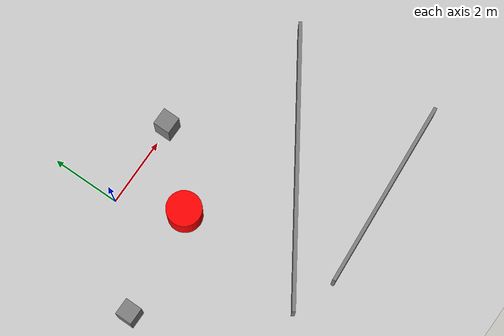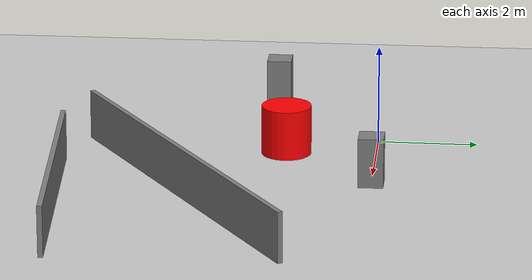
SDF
<?xml version='1.0' encoding='utf-8'?>
<sdf version="1.9">
  <world name="world_two">
    <physics name="1ms" type="dart">
      <max_step_size>0.001</max_step_size>
      <real_time_factor>1</real_time_factor>
      <real_time_update_rate>1000</real_time_update_rate>
    </physics>
    <plugin name="gz::sim::systems::Physics" filename="gz-sim-physics-system" />
    <plugin name="gz::sim::systems::UserCommands" filename="gz-sim-user-commands-system" />
    <plugin name="gz::sim::systems::SceneBroadcaster" filename="gz-sim-scene-broadcaster-system" />
    <plugin name="gz::sim::systems::Contact" filename="gz-sim-contact-system" />
    <plugin name="gz::sim::systems::Sensors" filename="gz-sim-sensors-system">
      <render_engine>ogre2</render_engine>
    </plugin>
    <gravity>0 0 -9.8</gravity>
    <magnetic_field>6e-06 2.3e-05 -4.2e-05</magnetic_field>
    <atmosphere type="adiabatic" />
    <scene>
      <ambient>0.4 0.4 0.4 1</ambient>
      <background>0.7 0.7 0.7 1</background>
      <shadows>true</shadows>
    </scene>
    <model name="ground_plane">
      <static>true</static>
      <link name="link">
        <collision name="collision">
          <geometry>
            <plane>
              <normal>0 0 1</normal>
              <size>100 100</size>
            </plane>
          </geometry>
          <surface>
            <friction>
              <ode />
            </friction>
            <bounce />
            <contact />
          </surface>
        </collision>
        <visual name="visual">
          <geometry>
            <plane>
              <normal>0 0 1</normal>
              <size>100 100</size>
            </plane>
          </geometry>
          <material>
            <ambient>0.8 0.8 0.8 1</ambient>
            <diffuse>0.8 0.8 0.8 1</diffuse>
            <specular>0.8 0.8 0.8 1</specular>
          </material>
        </visual>
        <pose>0 0 0 0 -0 0</pose>
        <inertial>
          <pose>0 0 0 0 -0 0</pose>
          <mass>1</mass>
          <inertia>
            <ixx>1</ixx>
            <ixy>0</ixy>
            <ixz>0</ixz>
            <iyy>1</iyy>
            <iyz>0</iyz>
            <izz>1</izz>
          </inertia>
        </inertial>
        <enable_wind>false</enable_wind>
      </link>
      <pose>0 0 0 0 -0 0</pose>
      <self_collide>false</self_collide>
    </model>
    <light name="sun" type="directional">
      <pose>0 0 10 0 -0 0</pose>
      <cast_shadows>true</cast_shadows>
      <intensity>1</intensity>
      <direction>-0.5 0.1 -0.9</direction>
      <diffuse>0.8 0.8 0.8 1</diffuse>
      <specular>0.2 0.2 0.2 1</specular>
      <attenuation>
        <range>1000</range>
        <linear>0.01</linear>
        <constant>0.90000000000000002</constant>
        <quadratic>0.001</quadratic>
      </attenuation>
      <spot>
        <inner_angle>0</inner_angle>
        <outer_angle>0</outer_angle>
        <falloff>0</falloff>
      </spot>
    </light>
  <model name="wall_1">
            <static>true</static>
            <type>wall</type>
            <pose>3.550000 -3.600000 0.500000 0 0 0.581082</pose>
            <link name="link">
                <collision name="collision">
                    <geometry><box><size>8.015610 0.100000 1.000000</size></box></geometry>
                </collision>
                <visual name="visual">
                    <geometry><box><size>8.015610 0.100000 1.000000</size></box></geometry>
                    <material>
                        <diffuse>0.5 0.5 0.5 1</diffuse>
                    </material>
                </visual></link></model><model name="wall_2">
            <static>true</static>
            <type>wall</type>
            <pose>4.250000 -6.000000 0.500000 0 0 0.072599</pose>
            <link name="link">
                <collision name="collision">
                    <geometry><box><size>5.514526 0.100000 1.000000</size></box></geometry>
                </collision>
                <visual name="visual">
                    <geometry><box><size>5.514526 0.100000 1.000000</size></box></geometry>
                    <material>
                        <diffuse>0.5 0.5 0.5 1</diffuse>
                    </material>
                </visual></link></model><model name="box_1">
            <static>true</static>
            <type>box</type>
            <pose>-2.300000 -2.200000 0.500000 0 0 0</pose>
            <link name="link">
                <collision name="collision">
                    <geometry><box><size>0.500000 0.500000 1.000000</size></box></geometry>
                </collision>
                <visual name="visual">
                    <geometry><box><size>0.500000 0.500000 1.000000</size></box></geometry>
                    <material>
                        <diffuse>0.5 0.5 0.5 1</diffuse>
                    </material>
                </visual></link></model><model name="box_2">
            <static>false</static>
            <type>box</type>
            <pose>2.500000 -0.000000 0.500000 0 0 0</pose>
            <link name="link">
                <collision name="collision">
                    <geometry><box><size>0.500000 0.500000 1.000000</size></box></geometry>
                </collision>
                <visual name="visual">
                    <geometry><box><size>0.500000 0.500000 1.000000</size></box></geometry>
                    <material>
                        <diffuse>0.5 0.5 0.5 1</diffuse>
                    </material>
                </visual><inertial>
                <mass>250.000000</mass>
                <inertia>
                    <ixx>26.041667</ixx><ixy>0</ixy><ixz>0</ixz>
                    <iyy>26.041667</iyy><iyz>0</iyz>
                    <izz>10.416667</izz>
                </inertia>
            </inertial><gravity>false</gravity></link><motion><type>linear</type><velocity>10.000000</velocity><std>0.100000</std><point><x>0.600000</x><y>-0.300000</y></point><point><x>5.200000</x><y>0.600000</y></point></motion></model><model name="cylinder_1">
            <static>false</static>
            <type>cylinder</type>
            <pose>0.800000 -1.800000 0.500000 0 0 0</pose>
            <link name="link">
                <collision name="collision">
                    <geometry><cylinder><radius>0.500000</radius><length>1.000000</length></cylinder></geometry>
                </collision>
                <visual name="visual">
                    <geometry><cylinder><radius>0.500000</radius><length>1.000000</length></cylinder></geometry>
                    <material>
                        <diffuse>1 0 0 1</diffuse>
                    </material>
                </visual><inertial>
                <mass>785.398163</mass>
                <inertia>
                    <ixx>114.537232</ixx><ixy>0</ixy><ixz>0</ixz>
                    <iyy>114.537232</iyy><iyz>0</iyz>
                    <izz>98.174770</izz>
                </inertia>
            </inertial><gravity>false</gravity></link><motion><type>elliptical</type><velocity>1.000000</velocity><std>0.100000</std><semi_major>2.000000</semi_major><semi_minor>1.000000</semi_minor><angle>-2.530867</angle></motion></model></world>
</sdf>
